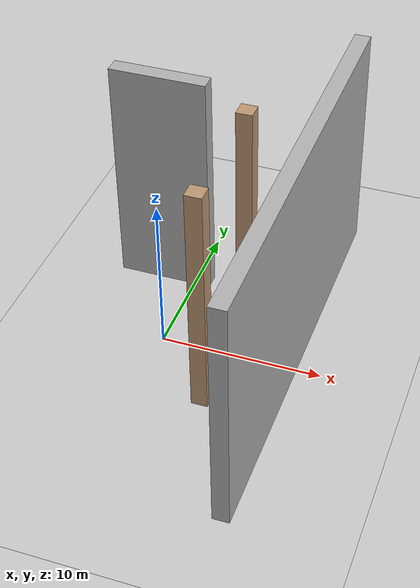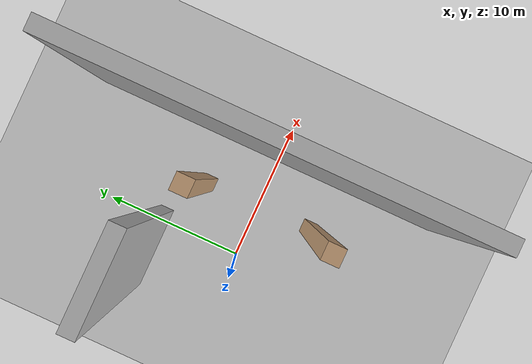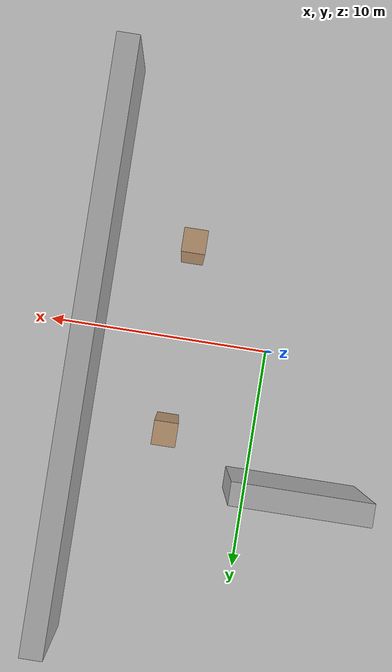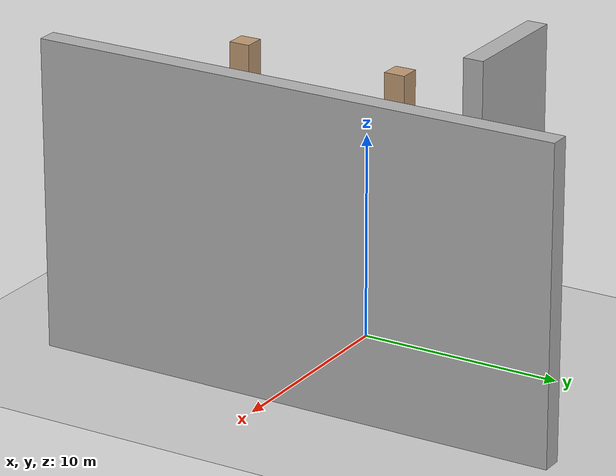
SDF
<?xml version="1.0" encoding="UTF-8"?>
<sdf version="1.9">
  <world name="pillars">
    <physics type="ode">
      <max_step_size>0.004</max_step_size>
      <real_time_factor>1.0</real_time_factor>
      <real_time_update_rate>250</real_time_update_rate>
    </physics>
    <gravity>0 0 -9.8</gravity>
    <magnetic_field>6e-06 2.3e-05 -4.2e-05</magnetic_field>
    <atmosphere type="adiabatic"/>
    <scene>
      <grid>false</grid>
      <ambient>0.4 0.4 0.4 1</ambient>
      <background>0.7 0.7 0.7 1</background>
      <shadows>true</shadows>
    </scene>
    <model name="ground_plane">
      <static>true</static>
      <link name="link">
        <collision name="collision">
          <geometry>
            <plane>
              <normal>0 0 1</normal>
              <size>1 1</size>
            </plane>
          </geometry>
          <surface>
            <friction>
              <ode/>
            </friction>
            <bounce/>
            <contact/>
          </surface>
        </collision>
        <visual name="visual">
          <geometry>
            <plane>
              <normal>0 0 1</normal>
              <size>100 100</size>
            </plane>
          </geometry>
          <material>
            <ambient>0.8 0.8 0.8 1</ambient>
            <diffuse>0.8 0.8 0.8 1</diffuse>
            <specular>0.8 0.8 0.8 1</specular>
          </material>
        </visual>
        <pose>0 0 0 0 -0 0</pose>
        <inertial>
          <pose>0 0 0 0 -0 0</pose>
          <mass>1</mass>
          <inertia>
            <ixx>1</ixx>
            <ixy>0</ixy>
            <ixz>0</ixz>
            <iyy>1</iyy>
            <iyz>0</iyz>
            <izz>1</izz>
          </inertia>
        </inertial>
        <enable_wind>false</enable_wind>
      </link>
      <pose>0 0 0 0 -0 0</pose>
      <self_collide>false</self_collide>
    </model>
    <light name="sunUTC" type="directional">
      <pose>0 0 500 0 -0 0</pose>
      <cast_shadows>true</cast_shadows>
      <intensity>1</intensity>
      <direction>0.001 0.625 -0.78</direction>
      <diffuse>0.904 0.904 0.904 1</diffuse>
      <specular>0.271 0.271 0.271 1</specular>
      <attenuation>
        <range>2000</range>
        <linear>0</linear>
        <constant>1</constant>
        <quadratic>0</quadratic>
      </attenuation>
      <spot>
        <inner_angle>0</inner_angle>
        <outer_angle>0</outer_angle>
        <falloff>0</falloff>
      </spot>
    </light>
    <spherical_coordinates>
      <surface_model>EARTH_WGS84</surface_model>
      <world_frame_orientation>ENU</world_frame_orientation>
      <latitude_deg>47.397971057728974</latitude_deg>
      <longitude_deg> 8.546163739800146</longitude_deg>
      <elevation>0</elevation>
    </spherical_coordinates>

    <model name="wall_east">
      <pose>8 1 7.5 0 0 0</pose>
      <static>true</static>
      <link name="link">
        <collision name="collision">
          <geometry>
            <box>
              <size>1 26 15</size>
            </box>
          </geometry>
        </collision>
        <visual name="visual">
          <geometry>
            <box>
              <size>1 26 15</size>
            </box>
          </geometry>
          <material>
            <ambient>0.3 0.3 0.3 1</ambient>
            <diffuse>0.7 0.7 0.7 1</diffuse>
            <specular>1 1 1 1</specular>
          </material>
        </visual>
      </link>
    </model>

    <model name="pillar_north">
      <pose>4 4 7.5 0 0 0</pose>
      <static>true</static>
      <link name="link">
        <collision name="collision">
          <geometry>
            <box>
              <size>1 1 15</size>
            </box>
          </geometry>
        </collision>
        <visual name="visual">
          <geometry>
            <box>
              <size>1 1 15</size>
            </box>
          </geometry>
          <material>
            <ambient>0.3 0.25 0.2 1</ambient>
            <diffuse>0.75 0.6 0.45 1</diffuse>
            <specular>1 1 1 1</specular>
          </material>
        </visual>
      </link>
    </model>

    <model name="pillar_south">
      <pose>4 -4 7.5 0 0 0</pose>
      <static>true</static>
      <link name="link">
        <collision name="collision">
          <geometry>
            <box>
              <size>1 1 15</size>
            </box>
          </geometry>
        </collision>
        <visual name="visual">
          <geometry>
            <box>
              <size>1 1 15</size>
            </box>
          </geometry>
          <material>
            <ambient>0.3 0.25 0.2 1</ambient>
            <diffuse>0.75 0.6 0.45 1</diffuse>
            <specular>1 1 1 1</specular>
          </material>
        </visual>
      </link>
    </model>

    <model name="wall_north">
      <pose>-2 6 7.5 0 0 0</pose>
      <static>true</static>
      <link name="link">
        <collision name="collision">
          <geometry>
            <box>
              <size>6 1 15</size>
            </box>
          </geometry>
        </collision>
        <visual name="visual">
          <geometry>
            <box>
              <size>6 1 15</size>
            </box>
          </geometry>
          <material>
            <ambient>0.3 0.3 0.3 1</ambient>
            <diffuse>0.7 0.7 0.7 1</diffuse>
            <specular>1 1 1 1</specular>
          </material>
        </visual>
      </link>
    </model>
  </world>
</sdf>
